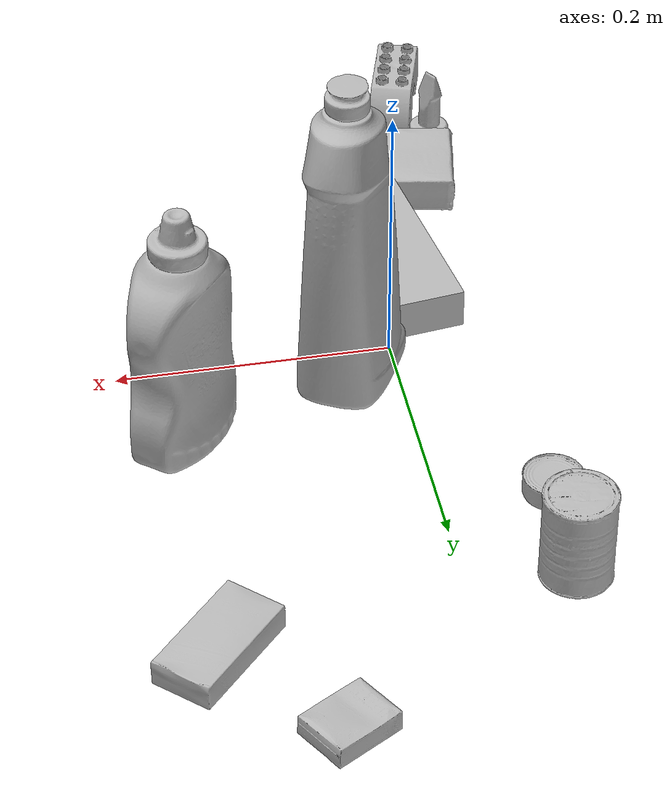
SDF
<sdf version="1.4">
  <world name="default">
    <light name="light1" type="point">
      <pose>0 0 1 0 0 0</pose>
      <diffuse>3 3 3 1</diffuse>
      <specular>3 3 3 1</specular>
    </light>
    <light name="light2" type="point">
      <pose>0 0.5 2 0 0 0</pose>
      <diffuse>1 1 1 1</diffuse>
      <specular>1 1 1 1</specular>
    </light>
    <light name="light3" type="point">
      <pose>0 0.5 2 0 0 0</pose>
      <diffuse>3 3 3 1</diffuse>
      <specular>3 3 3 1</specular>
    </light>
    <scene>
      <ambient>0.7 0.7 0.7</ambient>
    </scene>
    <model name="bottle1">
      <link name="link_bottle1">
        <collision name="default">
          <geometry>
            <mesh>
              <uri>model://mustard_bottle/collision_meshes/collision.obj</uri>
              <scale>1.0 1.0 1.0</scale>
            </mesh>
          </geometry>
          <surface>
            <friction>
              <ode>
                <mu>0.5</mu>
                <mu2>0.5</mu2>
              </ode>
            </friction>
          <contact>
        <ode>
            <max_vel>0</max_vel>
            <min_depth>0.0001</min_depth>
            <kp>1e8</kp>
        </ode>
    </contact></surface>
        </collision>
        <visual name="default">
          <geometry>
            <mesh>
              <uri>model://mustard_bottle/visual_meshes/visual.dae</uri>
              <scale>1.0 1.0 1.0</scale>
            </mesh>
          </geometry>
        </visual>
        <inertial>
          <mass>0.8303800225257874</mass>
          <pose>0.0005032453336752951 -0.00015647402324248105 -0.017475798726081848 0.0004182333015560062 0.0009465791044325989 0.02485372608929167</pose>
          <inertia>
            <ixx>0.0023058522</ixx>
            <iyy>0.0020231898</iyy>
            <izz>0.00060770847</izz>
            <ixy>0</ixy>
            <ixz>0</ixz>
            <iyz>0</iyz>
          </inertia>
        </inertial>
      </link>
      <pose>0.16022565960884094 0.06792080402374268 0.09615198522806168 1.4587503355951783e-05 1.6569935359421058e-05 2.4325145617123463</pose>
    </model>
    <model name="bottle2">
      <link name="link_bottle2">
        <collision name="default">
          <geometry>
            <mesh>
              <uri>model://bleach_cleanser/collision_meshes/collision.obj</uri>
              <scale>1.0 1.0 1.0</scale>
            </mesh>
          </geometry>
          <surface>
            <friction>
              <ode>
                <mu>0.5</mu>
                <mu2>0.5</mu2>
              </ode>
            </friction>
          <contact>
        <ode>
            <max_vel>0</max_vel>
            <min_depth>0.0001</min_depth>
            <kp>1e8</kp>
        </ode>
    </contact></surface>
        </collision>
        <visual name="default">
          <geometry>
            <mesh>
              <uri>model://bleach_cleanser/visual_meshes/visual.dae</uri>
              <scale>1.0 1.0 1.0</scale>
            </mesh>
          </geometry>
        </visual>
        <inertial>
          <mass>1.2443958520889282</mass>
          <pose>0.00012193184375064448 0.0037838828284293413 -0.02442161552608013 -0.07381670616387152 0.00042011519151103325 -0.006875073427896589</pose>
          <inertia>
            <ixx>0.006056655</ixx>
            <iyy>0.005643917</iyy>
            <izz>0.0010355307</izz>
            <ixy>0</ixy>
            <ixz>0</ixz>
            <iyz>0</iyz>
          </inertia>
        </inertial>
      </link>
      <pose>0.03274794667959213 0.0191644337028265 0.12578420341014862 -0.00020431144595594596 1.1370680297700007e-05 -0.4695078996306956</pose>
    </model>
    <model name="toy1">
      <link name="link_toy1">
        <collision name="default">
          <geometry>
            <mesh>
              <uri>model://e_lego_duplo/collision_meshes/collision.obj</uri>
              <scale>1.0 1.0 1.0</scale>
            </mesh>
          </geometry>
          <surface>
            <friction>
              <ode>
                <mu>0.5</mu>
                <mu2>0.5</mu2>
              </ode>
            </friction>
          <contact>
        <ode>
            <max_vel>0</max_vel>
            <min_depth>0.0001</min_depth>
            <kp>1e8</kp>
        </ode>
    </contact></surface>
        </collision>
        <visual name="default">
          <geometry>
            <mesh>
              <uri>model://e_lego_duplo/visual_meshes/visual.dae</uri>
              <scale>1.0 1.0 1.0</scale>
            </mesh>
          </geometry>
        </visual>
        <inertial>
          <mass>0.09737597405910492</mass>
          <pose>0.00032560466206632555 0.00023485408746637404 0.00195214559789747 -0.022567666099209266 -6.826041083389806e-05 -0.0076251575404409295</pose>
          <inertia>
            <ixx>2.0306108e-05</ixx>
            <iyy>8.3341496e-05</iyy>
            <izz>8.115786e-05</izz>
            <ixy>0</ixy>
            <ixz>0</ixz>
            <iyz>0</iyz>
          </inertia>
        </inertial>
      </link>
      <pose>-0.06673016399145126 -0.3051682114601135 0.021808991208672523 3.579573135794389e-05 -2.5534245002717975e-06 1.2845752509904924</pose>
    </model>
    <model name="toy2">
      <link name="link_toy2">
        <collision name="default">
          <geometry>
            <mesh>
              <uri>model://e_toy_airplane/collision_meshes/collision.obj</uri>
              <scale>1.0 1.0 1.0</scale>
            </mesh>
          </geometry>
          <surface>
            <friction>
              <ode>
                <mu>0.5</mu>
                <mu2>0.5</mu2>
              </ode>
            </friction>
          <contact>
        <ode>
            <max_vel>0</max_vel>
            <min_depth>0.0001</min_depth>
            <kp>1e8</kp>
        </ode>
    </contact></surface>
        </collision>
        <visual name="default">
          <geometry>
            <mesh>
              <uri>model://e_toy_airplane/visual_meshes/visual.dae</uri>
              <scale>1.0 1.0 1.0</scale>
            </mesh>
          </geometry>
        </visual>
        <inertial>
          <mass>0.02463557943701744</mass>
          <pose>0.0001174048229586333 -2.2482929125544615e-05 -0.011187203228473663 0.005518471763615081 0.009228316378097946 0.15041226495803456</pose>
          <inertia>
            <ixx>7.519061e-06</ixx>
            <iyy>7.442144e-06</iyy>
            <izz>2.2597733e-06</izz>
            <ixy>0</ixy>
            <ixz>0</ixz>
            <iyz>0</iyz>
          </inertia>
        </inertial>
      </link>
      <pose>-0.08302679657936096 -0.2482508271932602 0.03321217745542526 0.00014467045136444594 -4.8953208041370105e-05 -2.7179898343678226</pose>
    </model>
    <model name="can1">
      <link name="link_can1">
        <collision name="default">
          <geometry>
            <mesh>
              <uri>model://master_chef_can/collision_meshes/collision.obj</uri>
              <scale>0.5 0.5 0.5</scale>
            </mesh>
          </geometry>
          <surface>
            <friction>
              <ode>
                <mu>0.5</mu>
                <mu2>0.5</mu2>
              </ode>
            </friction>
          <contact>
        <ode>
            <max_vel>0</max_vel>
            <min_depth>0.0001</min_depth>
            <kp>1e8</kp>
        </ode>
    </contact></surface>
        </collision>
        <visual name="default">
          <geometry>
            <mesh>
              <uri>model://master_chef_can/visual_meshes/visual.dae</uri>
              <scale>0.5 0.5 0.5</scale>
            </mesh>
          </geometry>
        </visual>
        <inertial>
          <mass>0.10604178160429001</mass>
          <pose>-4.6619643399026245e-05 1.3926852204804163e-07 -5.079910988570191e-05 -0.0017995162277820833 0.0006479167566960504 -0.6102671332965355</pose>
          <inertia>
            <ixx>6.2239335e-05</ixx>
            <iyy>6.178125e-05</iyy>
            <izz>3.439199e-05</izz>
            <ixy>0</ixy>
            <ixz>0</ixz>
            <iyz>0</iyz>
          </inertia>
        </inertial>
      </link>
      <pose>-0.07375917583703995 0.25517717003822327 0.03530197963118553 -1.5310154834703773e-06 -6.361267586169035e-07 0.3605049606024247</pose>
    </model>
    <model name="can2">
      <link name="link_can2">
        <collision name="default">
          <geometry>
            <mesh>
              <uri>model://tuna_fish_can/collision_meshes/collision.obj</uri>
              <scale>0.5 0.5 0.5</scale>
            </mesh>
          </geometry>
          <surface>
            <friction>
              <ode>
                <mu>0.5</mu>
                <mu2>0.5</mu2>
              </ode>
            </friction>
          <contact>
        <ode>
            <max_vel>0</max_vel>
            <min_depth>0.0001</min_depth>
            <kp>1e8</kp>
        </ode>
    </contact></surface>
        </collision>
        <visual name="default">
          <geometry>
            <mesh>
              <uri>model://tuna_fish_can/visual_meshes/visual.dae</uri>
              <scale>0.5 0.5 0.5</scale>
            </mesh>
          </geometry>
        </visual>
        <inertial>
          <mass>0.028372401371598244</mass>
          <pose>-2.0361669157864526e-05 -7.256527169374749e-06 -0.0005269024986773729 -0.0017944775646394609 0.00017161727950706725 0.2405381123423382</pose>
          <inertia>
            <ixx>3.8359926e-06</ixx>
            <iyy>3.8200033e-06</iyy>
            <izz>6.5639315e-06</izz>
            <ixy>0</ixy>
            <ixz>0</ixz>
            <iyz>0</iyz>
          </inertia>
        </inertial>
      </link>
      <pose>-0.07826850563287735 0.1739455759525299 0.008520000614225864 -8.199893888811752e-09 -3.018611687113002e-08 2.304434952699821</pose>
    </model>
    <model name="box1">
      <link name="link_box1">
        <collision name="default">
          <geometry>
            <mesh>
              <uri>model://jenga/collision_meshes/collision.obj</uri>
              <scale>1.0 1.0 1.0</scale>
            </mesh>
          </geometry>
          <surface>
            <friction>
              <ode>
                <mu>0.5</mu>
                <mu2>0.5</mu2>
              </ode>
            </friction>
          <contact>
        <ode>
            <max_vel>0</max_vel>
            <min_depth>0.0001</min_depth>
            <kp>1e8</kp>
        </ode>
    </contact></surface>
        </collision>
        <visual name="default">
          <geometry>
            <mesh>
              <uri>model://jenga/visual_meshes/visual.dae</uri>
              <scale>1.0 1.0 1.0</scale>
            </mesh>
          </geometry>
        </visual>
        <inertial>
          <mass>0.19909408688545227</mass>
          <pose>-2.502855807051674e-07 -0.0001025000965455547 -4.0923401684267446e-05 0.0 -7.34215461761844e-07 0.0</pose>
          <inertia>
            <ixx>5.509416e-05</ixx>
            <iyy>0.00037331658</iyy>
            <izz>0.00039854718</izz>
            <ixy>0</ixy>
            <ixz>0</ixz>
            <iyz>0</iyz>
          </inertia>
        </inertial>
      </link>
      <pose>-0.02389153279364109 -0.0884680226445198 0.01500007975846529 2.101640378183974e-05 8.117157217647667e-06 1.711722950288028</pose>
    </model>
    <model name="box2">
      <link name="link_box2">
        <collision name="default">
          <geometry>
            <mesh>
              <uri>model://cracker_box/collision_meshes/collision.obj</uri>
              <scale>0.25 0.25 0.25</scale>
            </mesh>
          </geometry>
          <surface>
            <friction>
              <ode>
                <mu>0.5</mu>
                <mu2>0.5</mu2>
              </ode>
            </friction>
          <contact>
        <ode>
            <max_vel>0</max_vel>
            <min_depth>0.0001</min_depth>
            <kp>1e8</kp>
        </ode>
    </contact></surface>
        </collision>
        <visual name="default">
          <geometry>
            <mesh>
              <uri>model://cracker_box/visual_meshes/visual.dae</uri>
              <scale>0.25 0.25 0.25</scale>
            </mesh>
          </geometry>
        </visual>
        <inertial>
          <mass>0.04114612191915512</mass>
          <pose>0.00023660354781895876 6.358561950037256e-05 -0.0004257383698131889 -0.00031620780631524763 -0.011106488668660274 0.002546795934166242</pose>
          <inertia>
            <ixx>6.5410845e-06</ixx>
            <iyy>1.0800616e-05</iyy>
            <izz>1.5413472e-05</izz>
            <ixy>0</ixy>
            <ixz>0</ixz>
            <iyz>0</iyz>
          </inertia>
        </inertial>
      </link>
      <pose>0.10085492581129074 0.3688484728336334 0.009120448492467403 -0.011787972369578875 -0.007367090204131986 0.5381064027614878</pose>
    </model>
    <model name="box3">
      <link name="link_box3">
        <collision name="default">
          <geometry>
            <mesh>
              <uri>model://gelatin_box/collision_meshes/collision.obj</uri>
              <scale>1.0 1.0 1.0</scale>
            </mesh>
          </geometry>
          <surface>
            <friction>
              <ode>
                <mu>0.5</mu>
                <mu2>0.5</mu2>
              </ode>
            </friction>
          <contact>
        <ode>
            <max_vel>0</max_vel>
            <min_depth>0.0001</min_depth>
            <kp>1e8</kp>
        </ode>
    </contact></surface>
        </collision>
        <visual name="default">
          <geometry>
            <mesh>
              <uri>model://gelatin_box/visual_meshes/visual.dae</uri>
              <scale>1.0 1.0 1.0</scale>
            </mesh>
          </geometry>
        </visual>
        <inertial>
          <mass>0.2244011014699936</mass>
          <pose>0.00043196187471039593 0.00011156871914863586 -0.00036403213744051754 -0.001050372105108351 -0.004755819619724262 0.01644056133527167</pose>
          <inertia>
            <ixx>0.00015840889</ixx>
            <iyy>0.000113150636</iyy>
            <izz>0.0002411336</izz>
            <ixy>0</ixy>
            <ixz>0</ixz>
            <iyz>0</iyz>
          </inertia>
        </inertial>
      </link>
      <pose>-0.04694104939699173 -0.20006488263607025 0.015168553218245506 0.005587289906395195 -0.007287082405591451 -1.7594545961506853</pose>
    </model>
    <model name="box4">
      <link name="link_box4">
        <collision name="default">
          <geometry>
            <mesh>
              <uri>model://sugar_box/collision_meshes/collision.obj</uri>
              <scale>0.5 0.5 0.5</scale>
            </mesh>
          </geometry>
          <surface>
            <friction>
              <ode>
                <mu>0.5</mu>
                <mu2>0.5</mu2>
              </ode>
            </friction>
          <contact>
        <ode>
            <max_vel>0</max_vel>
            <min_depth>0.0001</min_depth>
            <kp>1e8</kp>
        </ode>
    </contact></surface>
        </collision>
        <visual name="default">
          <geometry>
            <mesh>
              <uri>model://sugar_box/visual_meshes/visual.dae</uri>
              <scale>0.5 0.5 0.5</scale>
            </mesh>
          </geometry>
        </visual>
        <inertial>
          <mass>0.11117161065340042</mass>
          <pose>0.0005171863595023751 1.9245546354795806e-05 -0.00018182402709499002 -0.0004046265622990317 0.001050663638873437 0.002615378555930204</pose>
          <inertia>
            <ixx>2.3156968e-05</ixx>
            <iyy>7.4848074e-05</iyy>
            <izz>8.960209e-05</izz>
            <ixy>0</ixy>
            <ixz>0</ixz>
            <iyz>0</iyz>
          </inertia>
        </inertial>
      </link>
      <pose>0.17073306441307068 0.288045197725296 0.011399302631616592 0.0007753013754485652 -0.023433215991397333 -2.332195254603681</pose>
    </model>
  <physics type="ode">
      <max_contacts>50</max_contacts>
      <ode>
        <solver>
          <type>quick</type>
          <iters>75</iters>
        </solver>
        <constraints>
          <contact_max_correcting_vel>0</contact_max_correcting_vel>
          <contact_surface_layer>0</contact_surface_layer>
        </constraints>
      </ode>
    </physics></world>
</sdf>
